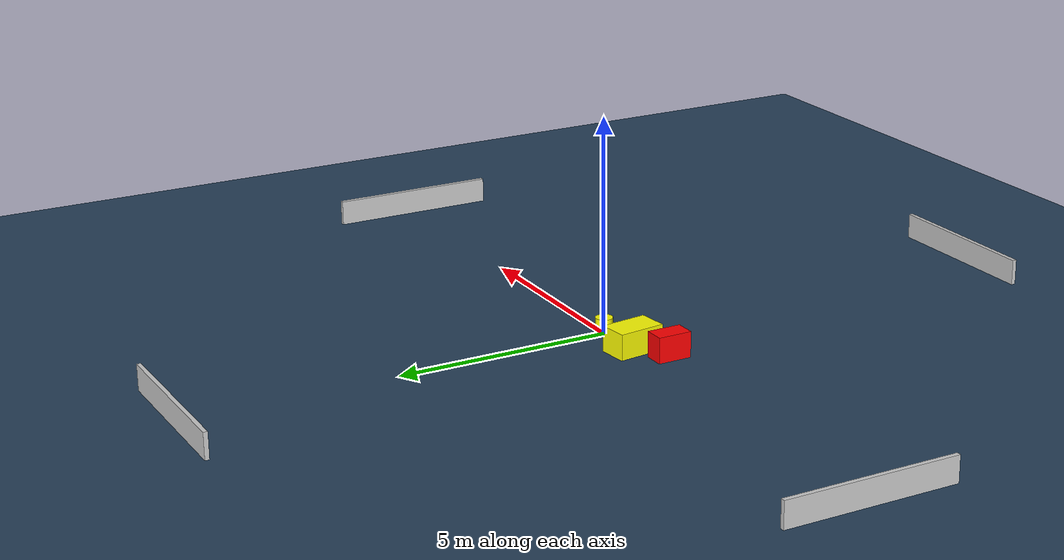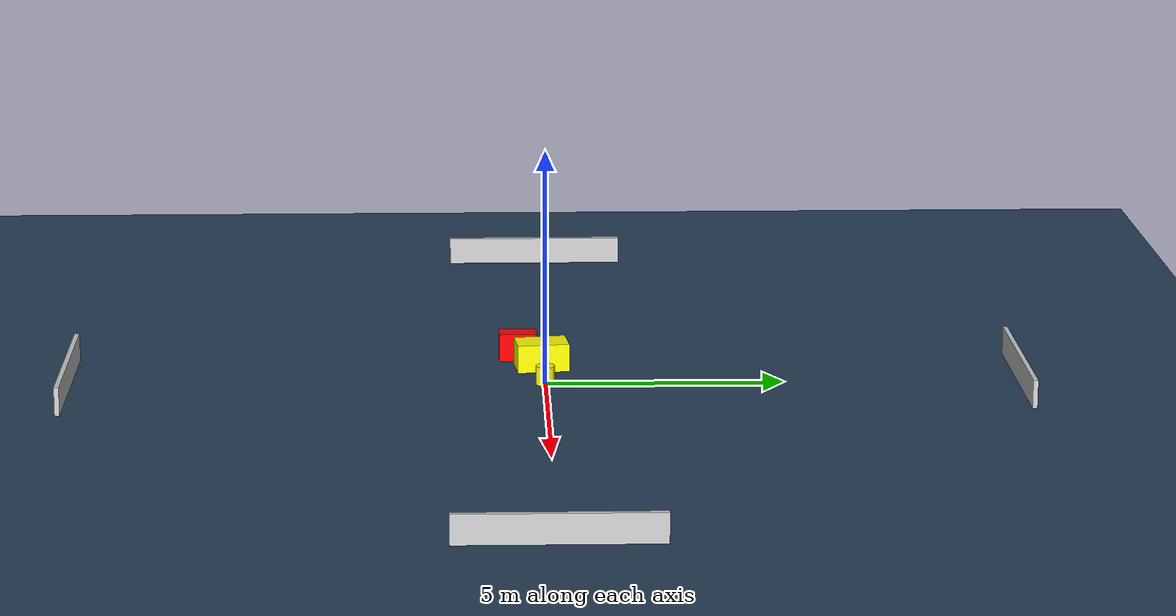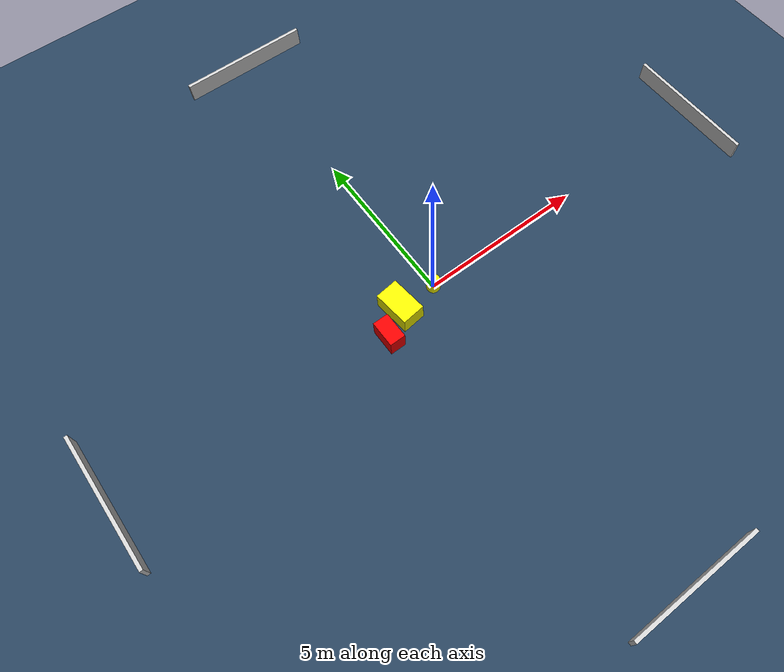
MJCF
<?xml version="1.0" ?>
<mujoco model="generated_environment">
  <option timestep="0.01" integrator="RK4" cone="elliptic"/>
  <default>
    <geom density="1"/>
  </default>
  <asset>
    <texture builtin="gradient" height="3072" name="skybox" rgb1="0.3 0.5 0.7" rgb2="0 0 0" type="skybox" width="512"/>
    <texture builtin="checker" height="300" name="groundplane" rgb1="0.2 0.3 0.4" rgb2="0.1 0.2 0.3" type="2d" width="300"/>
    <material name="groundplane" reflectance="0.2" texrepeat="5 5" texture="groundplane"/>
  </asset>
  <worldbody>
    <light dir="0 0 -1" directional="true" pos="0 0 1.5"/>
    <geom condim="3" friction="0.5 0.005 0.001" material="groundplane" name="floor" pos="0 0 0" size="0 0 0.05" type="plane"/>
    <body name="walls">
      <geom name="wall_1" condim="4" pos="-10.0 0.0 0.3" rgba="0.800000011920929 0.800000011920929 0.800000011920929 1.0" size="0.05 2.0 0.3" type="box"/>
      <geom name="wall_2" condim="4" pos="10.0 0.0 0.3" rgba="0.800000011920929 0.800000011920929 0.800000011920929 1.0" size="0.05 2.0 0.3" type="box"/>
      <geom name="wall_3" condim="4" pos="0.0 -10.0 0.3" rgba="0.800000011920929 0.800000011920929 0.800000011920929 1.0" size="2.0 0.05 0.3" type="box"/>
      <geom name="wall_4" condim="4" pos="0.0 10.0 0.3" rgba="0.800000011920929 0.800000011920929 0.800000011920929 1.0" size="2.0 0.05 0.3" type="box"/>
    </body>
    <body name="robot">
      <joint name="joint_x" type="slide" pos="0 0 0" axis="1 0 0"/>
      <joint name="joint_y" type="slide" pos="0 0 0" axis="0 1 0"/>
      <geom name="robot" type="cylinder" pos="0.0 0.0 0.2" size="0.2 0.2 0.0" mass="5.0" friction="1.0 0.005 0.0001" condim="4" rgba="1.0 1.0 0.0 1.0"/>
    </body>
    <body name="obstacle_1_movable">
      <geom name="obstacle_1_movable" condim="4" pos="-1.1719515449295763 -0.04873600961825151 0.3" euler="0 0 276.7213972431397" friction="0.0 0.005 0.001" rgba="1.0 1.0 0.0 1.0" size="0.5509802128572068 0.34438605764839675 0.3" type="box" mass="0.1"/>
      <joint type="free"/>
    </body>
    <body name="obstacle_2_static">
      <geom name="obstacle_2_static" condim="4" pos="-1.8946901050098441 -0.5457522734053808 0.3" euler="0 0 180.25222079789694" friction="0.0 0.005 0.001" rgba="1.0 0.0 0.0 1.0" size="0.23620222652040307 0.3972072664207441 0.3" type="box"/>
    </body>
  </worldbody>
  <actuator>
    <motor name="actuator_x" joint="joint_x" gear="1" ctrlrange="-1 1"/>
    <motor name="actuator_y" joint="joint_y" gear="1" ctrlrange="-1 1"/>
  </actuator>
</mujoco>
